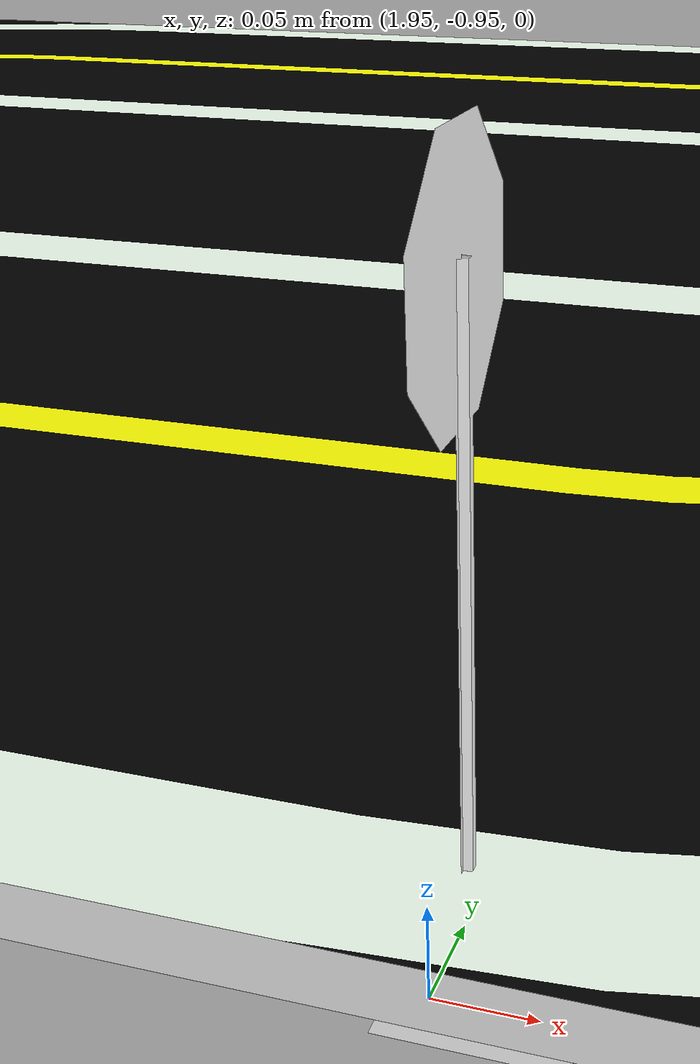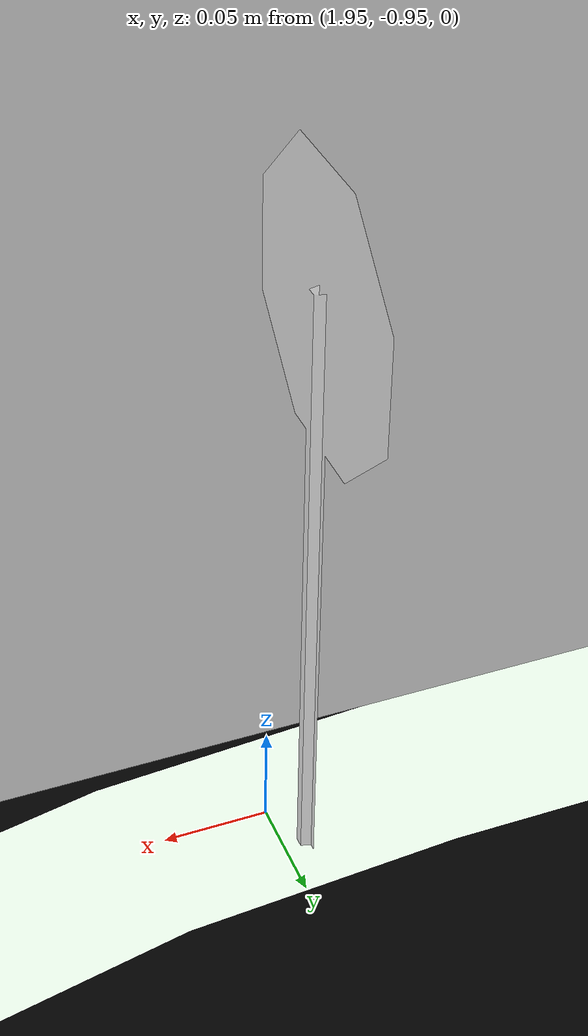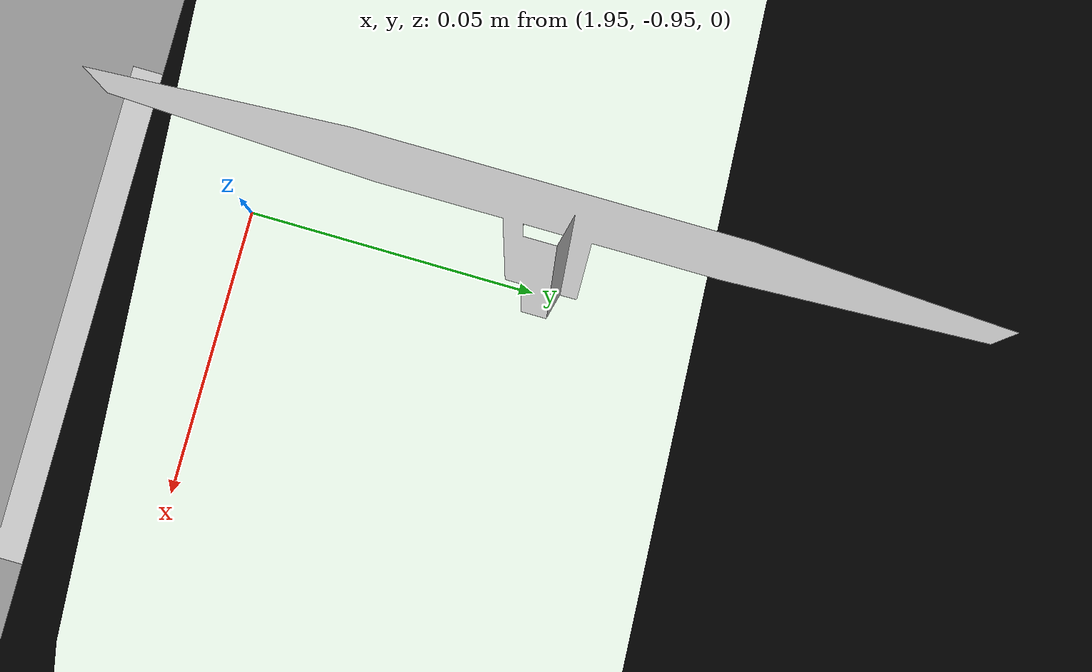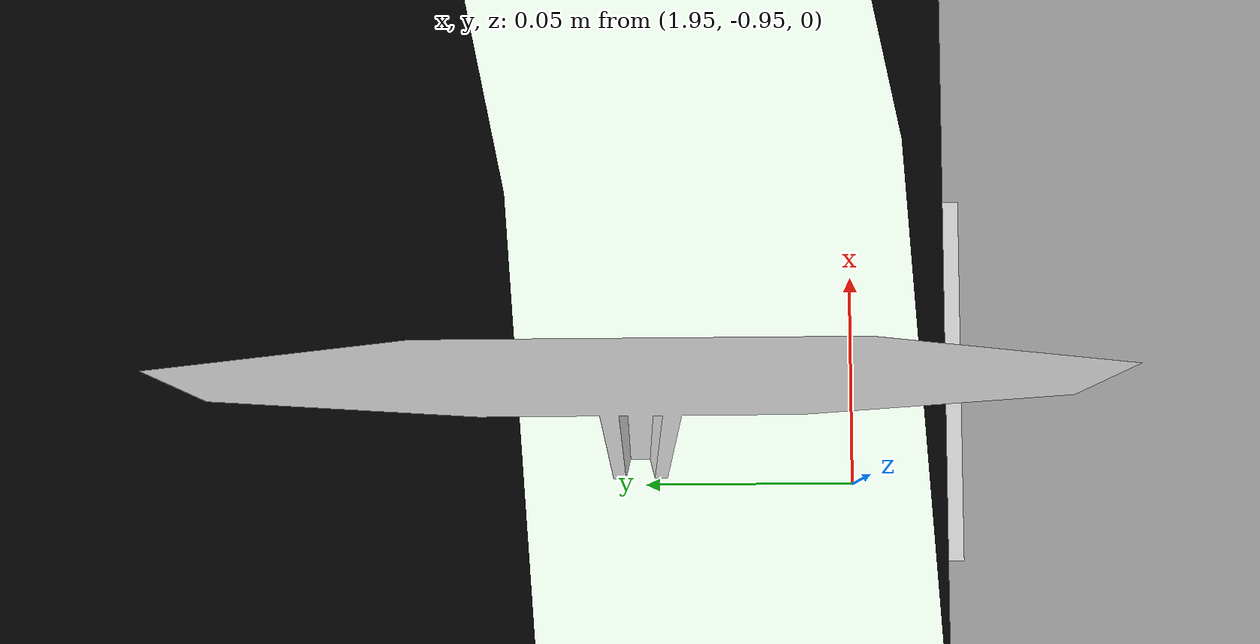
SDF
<sdf version="1.7">
 <world name="default">
  <light name="sun" type="directional">
   <pose>0 0 10 0 -0 0</pose>
   <diffuse>0.8 0.8 0.8 1</diffuse>
   <specular>0.1 0.1 0.1 1</specular>
   <attenuation>
    <range>1000</range>
    <constant>0.9</constant>
    <linear>0.01</linear>
    <quadratic>0.001</quadratic>
   </attenuation>
   <direction>-0.5 0.5 -1</direction>
   <spot><inner_angle>0</inner_angle><outer_angle>0</outer_angle><falloff>0</falloff></spot>
  </light>
  <model name="ground_plane">
   <static>1</static>
   <link name="link">
    <collision name="collision">
     <geometry><plane><normal>0 0 1</normal><size>100 100</size></plane></geometry>
     <surface><friction><ode><mu>100</mu><mu2>50</mu2></ode></friction></surface>
    </collision>
    <visual name="visual">
     <cast_shadows>0</cast_shadows>
     <geometry><plane><normal>0 0 1</normal><size>100 100</size></plane></geometry>
     <material>
      <script><uri>file://media/materials/scripts/gazebo.material</uri><name>Gazebo/Grey</name></script>
     </material>
    </visual>
   </link>
  </model>
  <gravity>0 0 -9.8</gravity>
  <magnetic_field>6e-06 2.3e-05 -4.2e-05</magnetic_field>
  <atmosphere type="adiabatic"/>
  <physics name="default_physics" default="0" type="ode">
   <max_step_size>0.001</max_step_size>
   <real_time_factor>1</real_time_factor>
   <real_time_update_rate>1000</real_time_update_rate>
  </physics>
  <scene><ambient>0.4 0.4 0.4 1</ambient><background>0.7 0.7 0.7 1</background><shadows>1</shadows></scene>
  <spherical_coordinates>
   <surface_model>EARTH_WGS84</surface_model>
   <latitude_deg>0</latitude_deg>
   <longitude_deg>0</longitude_deg>
   <elevation>0</elevation>
   <heading_deg>0</heading_deg>
  </spherical_coordinates>
  <model name="circle_road_0">
   <link name="link_0">
    <inertial>
     <mass>1</mass>
     <inertia>
      <ixx>0.166667</ixx>
      <ixy>0</ixy>
      <ixz>0</ixz>
      <iyy>0.166667</iyy>
      <iyz>0</iyz>
      <izz>0.166667</izz>
     </inertia>
    </inertial>
    <visual name="visual">
     <geometry>
      <mesh><uri>model://circle_road/meshes/circle_road.dae</uri><scale>0.5 0.5 0.5</scale></mesh>
     </geometry>
     <material><lighting>1</lighting></material>
    </visual>
    <collision name="collision">
     <geometry><mesh><uri>model://circle_road/meshes/circle_road.dae</uri><scale>1 1 1</scale></mesh></geometry>
     <surface>
      <friction>
       <ode><mu>1</mu><mu2>1</mu2><fdir1>0 0 0</fdir1><slip1>0</slip1><slip2>0</slip2></ode>
       <torsional>
        <coefficient>1</coefficient>
        <patch_radius>0</patch_radius>
        <surface_radius>0</surface_radius>
        <use_patch_radius>1</use_patch_radius>
        <ode><slip>0</slip></ode>
       </torsional>
      </friction>
      <bounce><restitution_coefficient>0</restitution_coefficient><threshold>1e+06</threshold></bounce>
      <contact>
       <collide_without_contact>0</collide_without_contact>
       <collide_without_contact_bitmask>1</collide_without_contact_bitmask>
       <collide_bitmask>1</collide_bitmask>
       <ode>
        <soft_cfm>0</soft_cfm>
        <soft_erp>0.2</soft_erp>
        <kp>1e+13</kp>
        <kd>1</kd>
        <max_vel>0.01</max_vel>
        <min_depth>0</min_depth>
       </ode>
       <bullet>
        <split_impulse>1</split_impulse>
        <split_impulse_penetration_threshold>-0.01</split_impulse_penetration_threshold>
        <soft_cfm>0</soft_cfm>
        <soft_erp>0.2</soft_erp>
        <kp>1e+13</kp>
        <kd>1</kd>
       </bullet>
      </contact>
     </surface>
    </collision>
   </link>
   <static>1</static>
   <pose>-0.637324 -0.968906 0 0 -0 0</pose>
  </model>
  <model name="Stop Sign">
   <static>1</static>
   <link name="link">
    <collision name="collision">
     <geometry><mesh><uri>model://stop_sign/meshes/stop_sign.dae</uri></mesh></geometry>
    </collision>
    <visual name="visual">
     <geometry><mesh><uri>model://stop_sign/meshes/stop_sign.dae</uri><scale>0.2 0.2 0.2</scale></mesh></geometry>
     <material>
      <script>
       <uri>model://stop_sign/materials/scripts</uri>
       <uri>model://stop_sign/materials/textures</uri>
       <name>StopSign/Diffuse</name>
      </script>
     </material>
    </visual>
   </link>
   <pose>1.95244 -0.898564 0 0 0 -1.57035</pose>
  </model>
 </world>
</sdf>
